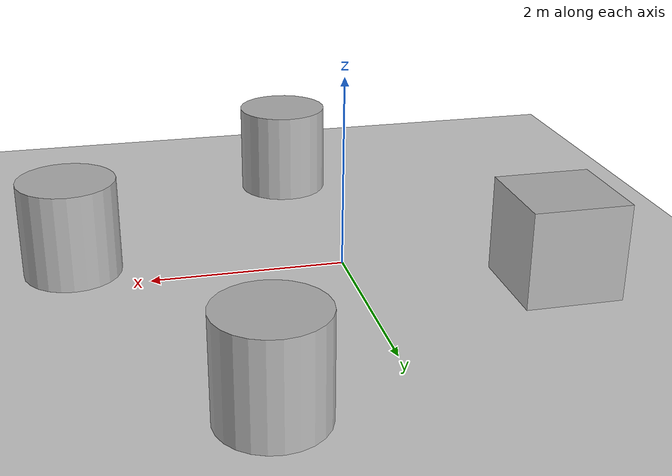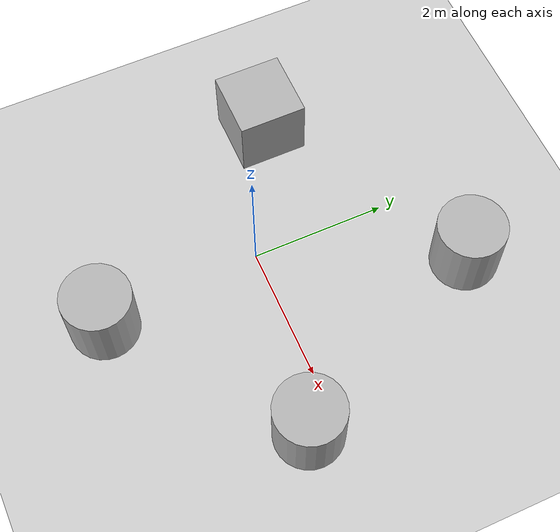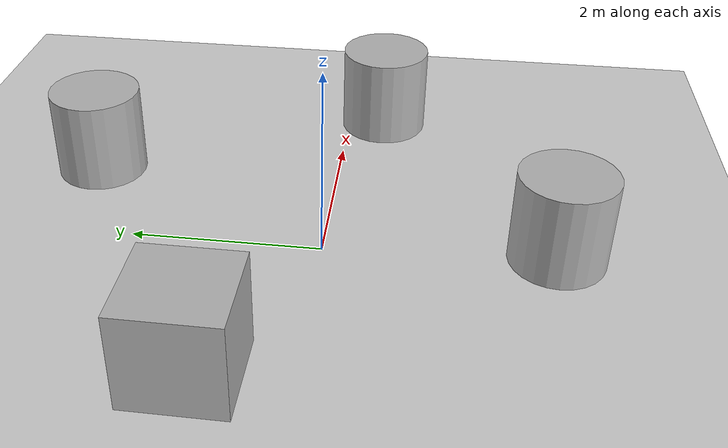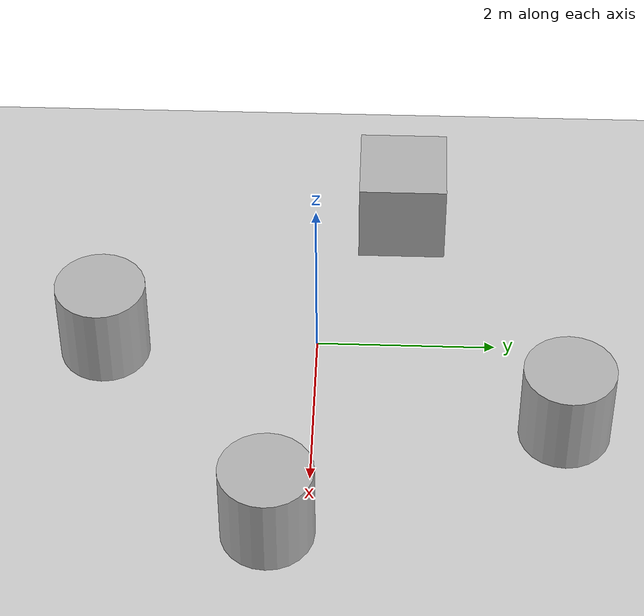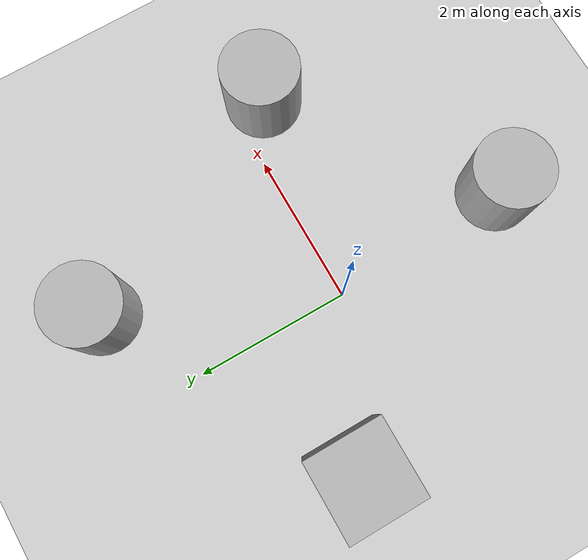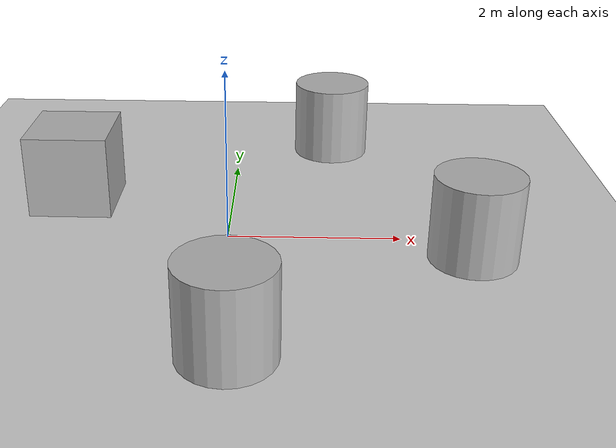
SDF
<sdf version='1.10'>
  <world name='empty'>
    <plugin name='gz::sim::systems::Physics' filename='gz-sim-physics-system'/>
    <plugin name='gz::sim::systems::UserCommands' filename='gz-sim-user-commands-system'/>
    <plugin name='gz::sim::systems::SceneBroadcaster' filename='gz-sim-scene-broadcaster-system'/>
    <plugin name='gz::sim::systems::Contact' filename='gz-sim-contact-system'/>
    <plugin name='gz::sim::systems::Sensors' filename='gz-sim-sensors-system'>
      <render_engine>ogre2</render_engine>
    </plugin>
    <gravity>0 0 -9.8000000000000007</gravity>
    <magnetic_field>5.5644999999999998e-06 2.2875799999999999e-05 -4.2388400000000002e-05</magnetic_field>
    <atmosphere type='adiabatic'/>
    <physics type='ode'>
      <max_step_size>0.001</max_step_size>
      <real_time_factor>1</real_time_factor>
      <real_time_update_rate>1000</real_time_update_rate>
    </physics>
    <scene>
      <ambient>0.400000006 0.400000006 0.400000006 1</ambient>
      <background>0.699999988 0.699999988 0.699999988 1</background>
      <shadows>true</shadows>
    </scene>
    <model name='ground_plane'>
      <static>true</static>
      <link name='link'>
        <collision name='collision'>
          <geometry>
            <plane>
              <normal>0 0 1</normal>
              <size>100 100</size>
            </plane>
          </geometry>
          <surface>
            <friction>
              <ode/>
            </friction>
            <bounce/>
            <contact/>
          </surface>
        </collision>
        <visual name='visual'>
          <geometry>
            <plane>
              <normal>0 0 1</normal>
              <size>100 100</size>
            </plane>
          </geometry>
          <material>
            <ambient>0.800000012 0.800000012 0.800000012 1</ambient>
            <diffuse>0.800000012 0.800000012 0.800000012 1</diffuse>
          </material>
        </visual>
        <pose>0 0 0 0 0 0</pose>
        <inertial>
          <pose>0 0 0 0 0 0</pose>
          <mass>1</mass>
          <inertia>
            <ixx>1</ixx>
            <ixy>0</ixy>
            <ixz>0</ixz>
            <iyy>1</iyy>
            <iyz>0</iyz>
            <izz>1</izz>
          </inertia>
        </inertial>
        <enable_wind>false</enable_wind>
      </link>
      <pose>0 0 0 0 0 0</pose>
      <self_collide>false</self_collide>
    </model>

    <model name='cylinder'>
      <pose>2.7561759090645772 -0.41638305263764042 0.49999942638036005 1.7559588437038117e-19 3.6640412679605574e-20 1.2332841506951205e-20</pose>
      <link name='cylinder_link'>
        <inertial>
          <inertia>
            <ixx>0.14580000000000001</ixx>
            <ixy>0</ixy>
            <ixz>0</ixz>
            <iyy>0.14580000000000001</iyy>
            <iyz>0</iyz>
            <izz>0.125</izz>
          </inertia>
          <mass>1</mass>
          <pose>0 0 0 0 0 0</pose>
        </inertial>
        <collision name='cylinder_collision'>
          <geometry>
            <cylinder>
              <radius>0.5</radius>
              <length>1</length>
            </cylinder>
          </geometry>
          <surface>
            <friction>
              <ode/>
            </friction>
            <bounce/>
            <contact/>
          </surface>
        </collision>
        <visual name='cylinder_visual'>
          <geometry>
            <cylinder>
              <radius>0.5</radius>
              <length>1</length>
            </cylinder>
          </geometry>
          <material>
            <ambient>0.300000012 0.300000012 0.300000012 1</ambient>
            <diffuse>0.699999988 0.699999988 0.699999988 1</diffuse>
            <specular>1 1 1 1</specular>
          </material>
        </visual>
        <pose>0 0 0 0 0 0</pose>
        <enable_wind>false</enable_wind>
      </link>
      <static>false</static>
      <self_collide>false</self_collide>
    </model>
    <model name='cylinder_0'>
      <pose>1.2716904264600846 2.7309019727315444 0.49999942638036005 8.7682919201274232e-20 5.9021970732513291e-19 8.8063152679703826e-21</pose>
      <link name='cylinder_link'>
        <inertial>
          <inertia>
            <ixx>0.14580000000000001</ixx>
            <ixy>0</ixy>
            <ixz>0</ixz>
            <iyy>0.14580000000000001</iyy>
            <iyz>0</iyz>
            <izz>0.125</izz>
          </inertia>
          <mass>1</mass>
          <pose>0 0 0 0 0 0</pose>
        </inertial>
        <collision name='cylinder_collision'>
          <geometry>
            <cylinder>
              <radius>0.5</radius>
              <length>1</length>
            </cylinder>
          </geometry>
          <surface>
            <friction>
              <ode/>
            </friction>
            <bounce/>
            <contact/>
          </surface>
        </collision>
        <visual name='cylinder_visual'>
          <geometry>
            <cylinder>
              <radius>0.5</radius>
              <length>1</length>
            </cylinder>
          </geometry>
          <material>
            <ambient>0.300000012 0.300000012 0.300000012 1</ambient>
            <diffuse>0.699999988 0.699999988 0.699999988 1</diffuse>
            <specular>1 1 1 1</specular>
          </material>
        </visual>
        <pose>0 0 0 0 0 0</pose>
        <enable_wind>false</enable_wind>
      </link>
      <static>false</static>
      <self_collide>false</self_collide>
    </model>
    <model name='cylinder_1'>
      <pose>0.16291974634169648 -2.3717226550251174 0.49999942638036005 1.6711233620702626e-19 -2.6413480076923534e-19 1.5494813173173901e-21</pose>
      <link name='cylinder_link'>
        <inertial>
          <inertia>
            <ixx>0.14580000000000001</ixx>
            <ixy>0</ixy>
            <ixz>0</ixz>
            <iyy>0.14580000000000001</iyy>
            <iyz>0</iyz>
            <izz>0.125</izz>
          </inertia>
          <mass>1</mass>
          <pose>0 0 0 0 0 0</pose>
        </inertial>
        <collision name='cylinder_collision'>
          <geometry>
            <cylinder>
              <radius>0.5</radius>
              <length>1</length>
            </cylinder>
          </geometry>
          <surface>
            <friction>
              <ode/>
            </friction>
            <bounce/>
            <contact/>
          </surface>
        </collision>
        <visual name='cylinder_visual'>
          <geometry>
            <cylinder>
              <radius>0.5</radius>
              <length>1</length>
            </cylinder>
          </geometry>
          <material>
            <ambient>0.300000012 0.300000012 0.300000012 1</ambient>
            <diffuse>0.699999988 0.699999988 0.699999988 1</diffuse>
            <specular>1 1 1 1</specular>
          </material>
        </visual>
        <pose>0 0 0 0 0 0</pose>
        <enable_wind>false</enable_wind>
      </link>
      <static>false</static>
      <self_collide>false</self_collide>
    </model>
    <model name='box'>
      <pose>-1.954984032023618 0.93394620005679474 0.49999999990199806 -2.6020270235367844e-21 2.8123058013609069e-22 -1.4428456090560715e-22</pose>
      <link name='box_link'>
        <inertial>
          <inertia>
            <ixx>0.16666</ixx>
            <ixy>0</ixy>
            <ixz>0</ixz>
            <iyy>0.16666</iyy>
            <iyz>0</iyz>
            <izz>0.16666</izz>
          </inertia>
          <mass>1</mass>
          <pose>0 0 0 0 0 0</pose>
        </inertial>
        <collision name='box_collision'>
          <geometry>
            <box>
              <size>1 1 1</size>
            </box>
          </geometry>
          <surface>
            <friction>
              <ode/>
            </friction>
            <bounce/>
            <contact/>
          </surface>
        </collision>
        <visual name='box_visual'>
          <geometry>
            <box>
              <size>1 1 1</size>
            </box>
          </geometry>
          <material>
            <ambient>0.300000012 0.300000012 0.300000012 1</ambient>
            <diffuse>0.699999988 0.699999988 0.699999988 1</diffuse>
            <specular>1 1 1 1</specular>
          </material>
        </visual>
        <pose>0 0 0 0 0 0</pose>
        <enable_wind>false</enable_wind>
      </link>
      <static>false</static>
      <self_collide>false</self_collide>
    </model>
    <light name='sun' type='directional'>
      <pose>0 0 10 0 0 0</pose>
      <cast_shadows>true</cast_shadows>
      <intensity>1</intensity>
      <direction>-0.5 0.10000000000000001 -0.90000000000000002</direction>
      <diffuse>0.800000012 0.800000012 0.800000012 1</diffuse>
      <specular>0.200000003 0.200000003 0.200000003 1</specular>
      <attenuation>
        <range>10</range>
        <linear>1</linear>
        <constant>1</constant>
        <quadratic>0</quadratic>
      </attenuation>
      <spot>
        <inner_angle>0</inner_angle>
        <outer_angle>0</outer_angle>
        <falloff>0</falloff>
      </spot>
    </light>
  </world>
</sdf>
